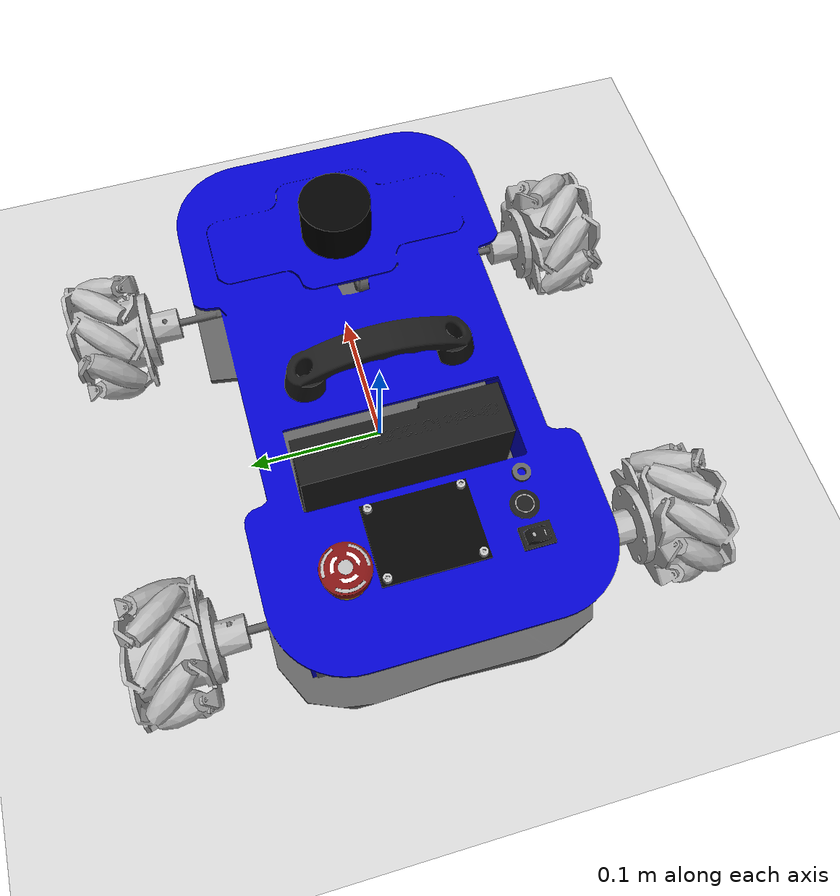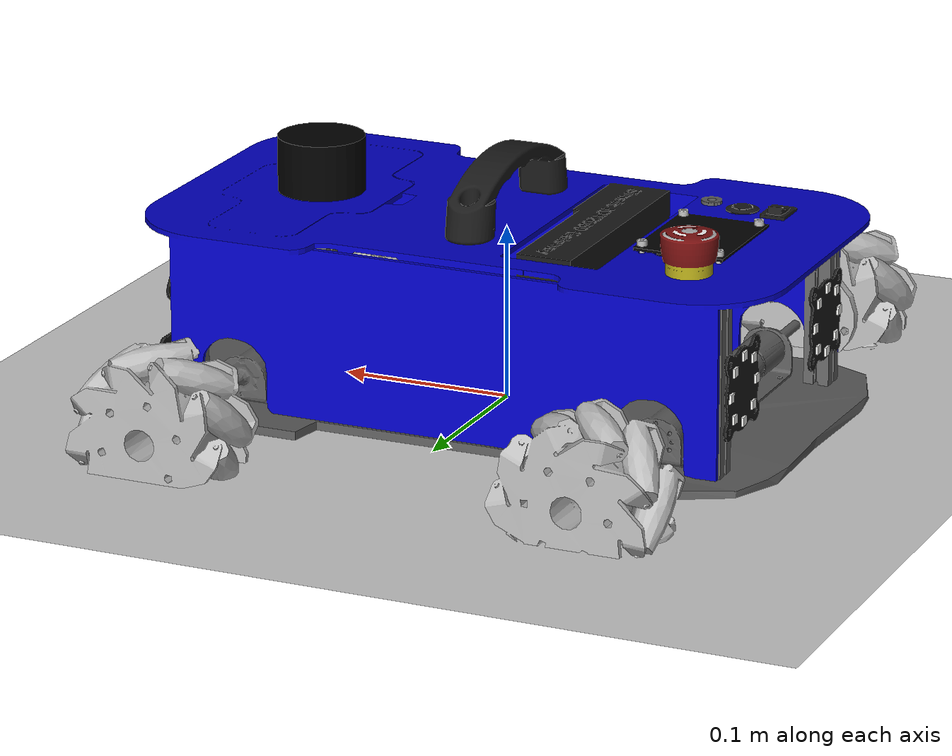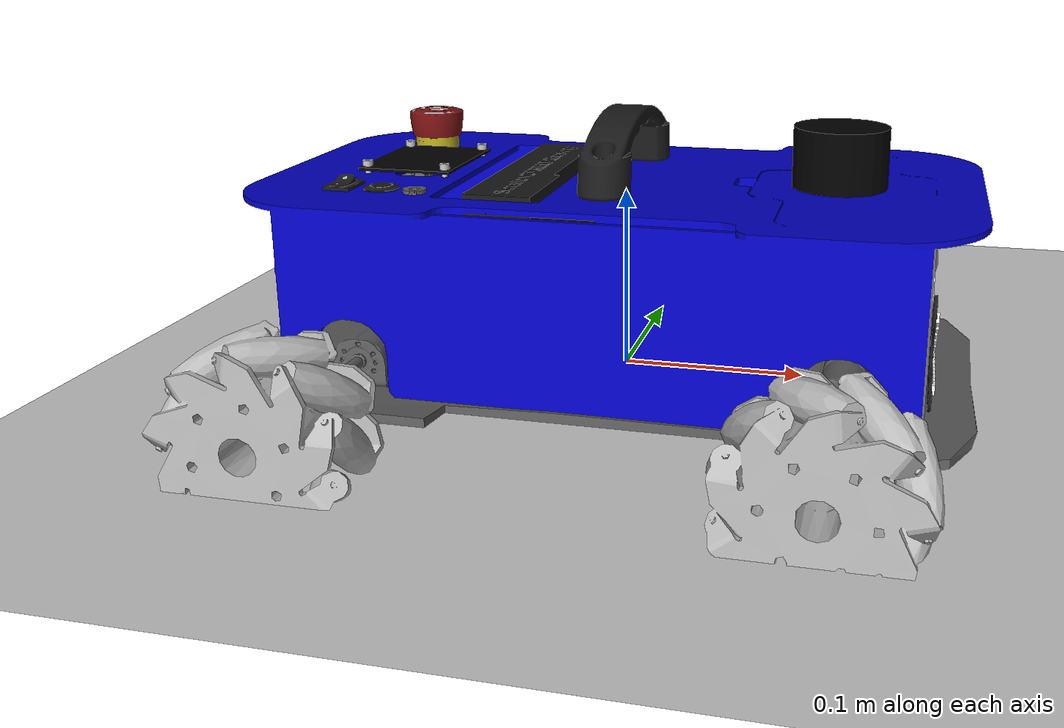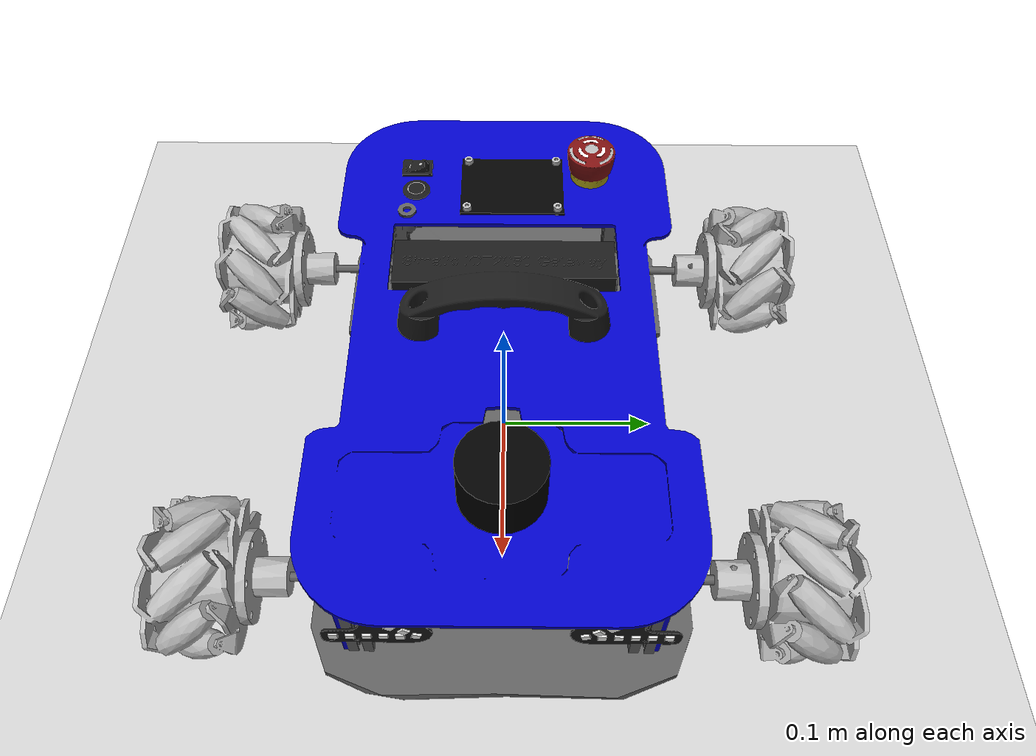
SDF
<sdf version="1.5">
 <world name="eduard_blue_nav2">
  <include><uri>model://sun</uri></include>
  <include><uri>model://ground_plane</uri></include>
  <include><uri>model://eduard_blue_mecanum</uri></include>
 </world>
</sdf>

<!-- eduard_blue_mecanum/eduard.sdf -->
<sdf version='1.5'>
  <model name="eduard-blue-mecanum">
    <static>true</static>
    <pose>0 0 0 0 0 0</pose>
      <!-- chassis -->
      <link name="chassis">
        <pose>0 0 0 0 0 0</pose>
        <inertial>
          <pose>0 0 0 0 0 0</pose>
          <mass>5.0</mass>
          <inertia>
            <ixx>0.00276</ixx>
            <iyy>0.00882</iyy>
            <izz>0.01119</izz>
            <ixy>0</ixy>
            <ixz>0</ixz>
            <iyz>0</iyz>
          </inertia>
        </inertial>
        <visual name="visual">
          <pose>0 0 0 0 0 1.570796327</pose>
          <geometry>
            <mesh>
              <uri>model://eduard_blue_mecanum/mesh/eduard-blue-chassis.dae</uri>
            </mesh>
          </geometry>
        </visual>
        <collision name="collision_bottom">
          <pose>0 0 0.01 0 0 0</pose>
          <geometry>
            <box>
              <size>0.38 0.22 0.02</size>
            </box>
          </geometry>
        </collision>
        <collision name="collision_top">
          <pose>0 0 0.1 0 0 0</pose>
          <geometry>
            <box>
              <size>0.38 0.22 0.02</size>
            </box>
          </geometry>
        </collision>
      </link>

      <!-- wheel rear right -->
      <link name="motor_a">
        <pose>-0.125 -0.18 0.02 -1.570796327 0 0</pose>
        <inertial>
          <pose>0 0 0 0 0 0</pose>
          <mass>0.3</mass>
          <inertia>
            <ixx>3.0e-5</ixx>
            <iyy>3.0e-5</iyy>
            <izz>5.0e-5</izz>
            <ixy>0</ixy>
            <ixz>0</ixz>
            <iyz>0</iyz>
          </inertia>
        </inertial>
        <visual name="visual">
          <geometry>
            <mesh>
              <uri>model://eduard_blue_mecanum/mesh/mecanum-wheel-left-eduard.dae</uri>
            </mesh>
          </geometry>
        </visual>
        <collision name="collision">
          <pose>0 0 0 0 0 0</pose>
          <geometry>
            <cylinder>
              <radius>0.05</radius>
              <length>0.055</length>
            </cylinder>
          </geometry>
          <max_contacts>2</max_contacts>
          <surface>
            <friction>
              <torsional>
                <coefficient>0.9</coefficient>
                <surface_radius>0.01</surface_radius>
                <use_patch_radius>true</use_patch_radius>
                <ode>
                  <slip>0.2</slip>
                </ode>
              </torsional>
            </friction>
            <contact>
              <ode>
                <min_depth>0.005</min_depth>
              </ode>
            </contact>
          </surface>
        </collision>
      </link>

      <!-- wheel front right -->
      <link name="motor_b">
        <pose>0.125 -0.18 0.02 -1.570796327 0 0</pose>
        <inertial>
          <pose>0 0 0 0 0 0</pose>
          <mass>0.3</mass>
          <inertia>
            <ixx>3.0e-5</ixx>
            <iyy>3.0e-5</iyy>
            <izz>5.0e-5</izz>
            <ixy>0</ixy>
            <ixz>0</ixz>
            <iyz>0</iyz>
          </inertia>
        </inertial>
        <visual name="visual">
          <geometry>
            <mesh>
              <uri>model://eduard_blue_mecanum/mesh/mecanum-wheel-right-eduard.dae</uri>
            </mesh>
          </geometry>
        </visual>
        <collision name="collision">
          <pose>0 0 0 0 0 0</pose>
          <geometry>
            <cylinder>
              <radius>0.05</radius>
              <length>0.055</length>
            </cylinder>
          </geometry>
          <max_contacts>2</max_contacts>
          <surface>
            <friction>
              <torsional>
                <coefficient>0.9</coefficient>
                <surface_radius>0.01</surface_radius>
                <use_patch_radius>true</use_patch_radius>
                <ode>
                  <slip>0.2</slip>
                </ode>
              </torsional>
            </friction>
            <contact>
              <ode>
                <min_depth>0.005</min_depth>
              </ode>
            </contact>
          </surface>
        </collision>
      </link>

      <!-- wheel rear left -->
      <link name="motor_c">
        <pose>-0.125 0.18 0.02 1.570796327 0 0</pose>
        <inertial>
          <pose>0 0 0 0 0 0</pose>
          <mass>0.3</mass>
          <inertia>
            <ixx>3.0e-5</ixx>
            <iyy>3.0e-5</iyy>
            <izz>5.0e-5</izz>
            <ixy>0</ixy>
            <ixz>0</ixz>
            <iyz>0</iyz>
          </inertia>
        </inertial>
        <visual name="visual">
          <geometry>
            <mesh>
              <uri>model://eduard_blue_mecanum/mesh/mecanum-wheel-right-eduard.dae</uri>
            </mesh>
          </geometry>
        </visual>
        <collision name="collision">
          <pose>0 0 0 0 0 0</pose>
          <geometry>
            <cylinder>
              <radius>0.05</radius>
              <length>0.055</length>
            </cylinder>
          </geometry>
          <max_contacts>2</max_contacts>
          <surface>
            <friction>
              <torsional>
                <coefficient>0.9</coefficient>
                <surface_radius>0.01</surface_radius>
                <use_patch_radius>true</use_patch_radius>
                <ode>
                  <slip>0.2</slip>
                </ode>
              </torsional>
            </friction>
            <contact>
              <ode>
                <min_depth>0.005</min_depth>
              </ode>
            </contact>
          </surface>
        </collision>
      </link>

      <!-- wheel front left -->
      <link name="motor_d">
        <pose>0.125 0.18 0.02 1.570796327 0 0</pose>
        <inertial>
          <pose>0 0 0 0 0 0</pose>
          <mass>0.3</mass>
          <inertia>
            <ixx>3.0e-5</ixx>
            <iyy>3.0e-5</iyy>
            <izz>5.0e-5</izz>
            <ixy>0</ixy>
            <ixz>0</ixz>
            <iyz>0</iyz>
          </inertia>
        </inertial>
        <visual name="visual">
          <geometry>
            <mesh>
              <uri>model://eduard_blue_mecanum/mesh/mecanum-wheel-left-eduard.dae</uri>
            </mesh>
          </geometry>
        </visual>
        <collision name="collision">
          <pose>0 0 0 0 0 0</pose>
          <geometry>
            <cylinder>
              <radius>0.05</radius>
              <length>0.055</length>
            </cylinder>
          </geometry>
          <max_contacts>2</max_contacts>
          <surface>
            <friction>
              <torsional>
                <coefficient>0.9</coefficient>
                <surface_radius>0.01</surface_radius>
                <use_patch_radius>true</use_patch_radius>
                <ode>
                  <slip>0.2</slip>
                </ode>
              </torsional>
            </friction>
            <contact>
              <ode>
                <min_depth>0.005</min_depth>
              </ode>
            </contact>
          </surface>
        </collision>
      </link>

      <!-- Range Sensors -->
      <!-- Front Left-->
      <link name="range_front_left">
        <pose>0.17 0.063 0.045 0 0 0</pose>
        <inertial>
          <pose>0 0 0 0 0 0</pose>
          <mass>0.1</mass>
          <inertia>
            <ixx>3.0e-6</ixx>
            <iyy>3.0e-6</iyy>
            <izz>5.0e-6</izz>
            <ixy>0</ixy>
            <ixz>0</ixz>
            <iyz>0</iyz>
          </inertia>
        </inertial>
        <sensor name="range/front/left" type="ray">
          <visualize>false</visualize>
          <ray>
            <scan>
              <horizontal>
                <min_angle>-0.08726646</min_angle>
                <max_angle> 0.08726646</max_angle>
                <samples>4</samples>
              </horizontal>
              <vertical>
                <min_angle>-0.04363323</min_angle>
                <max_angle> 0.04363323</max_angle>
                <samples>2</samples>
              </vertical>
            </scan>
            <range>
              <min>0.01</min>
              <max>2.0</max>
            </range>
            <noise>
              <type>gaussian</type>
              <stddev>0.0025</stddev>
            </noise>
          </ray>
        </sensor>
      </link>
      <!-- Front Right-->
      <link name="range_front_right">
        <pose>0.17 -0.063 0.045 0 0 0</pose>
        <inertial>
          <pose>0 0 0 0 0 0</pose>
          <mass>0.1</mass>
          <inertia>
            <ixx>3.0e-6</ixx>
            <iyy>3.0e-6</iyy>
            <izz>5.0e-6</izz>
            <ixy>0</ixy>
            <ixz>0</ixz>
            <iyz>0</iyz>
          </inertia>
        </inertial>
        <sensor name="range/front/right" type="ray">
          <visualize>false</visualize>
          <ray>
            <scan>
              <horizontal>
                <min_angle>-0.08726646</min_angle>
                <max_angle> 0.08726646</max_angle>
                <samples>4</samples>
              </horizontal>
              <vertical>
                <min_angle>-0.04363323</min_angle>
                <max_angle> 0.04363323</max_angle>
                <samples>2</samples>
              </vertical>
            </scan>
            <range>
              <min>0.01</min>
              <max>2.0</max>
            </range>
            <noise>
              <type>gaussian</type>
              <stddev>0.0025</stddev>
            </noise>
          </ray>
        </sensor>
      </link>
      <!-- Rear Left -->
      <link name="range_rear_left">
        <pose>-0.17 0.063 0.05 0 0 3.141592654</pose>
        <inertial>
          <pose>0 0 0 0 0 0</pose>
          <mass>0.1</mass>
          <inertia>
            <ixx>3.0e-6</ixx>
            <iyy>3.0e-6</iyy>
            <izz>5.0e-6</izz>
            <ixy>0</ixy>
            <ixz>0</ixz>
            <iyz>0</iyz>
          </inertia>
        </inertial>
        <sensor name="range/rear/left" type="ray">
          <visualize>false</visualize>
          <ray>
            <scan>
              <horizontal>
                <min_angle>-0.08726646</min_angle>
                <max_angle> 0.08726646</max_angle>
                <samples>4</samples>
              </horizontal>
              <vertical>
                <min_angle>-0.04363323</min_angle>
                <max_angle> 0.04363323</max_angle>
                <samples>2</samples>
              </vertical>
            </scan>
            <range>
              <min>0.01</min>
              <max>2.0</max>
            </range>
            <noise>
              <type>gaussian</type>
              <stddev>0.0025</stddev>
            </noise>
          </ray>
        </sensor>
      </link>
      <!-- Rear Right-->
      <link name="range_rear_right">
        <pose>-0.17 -0.063 0.05 0 0 3.141592654</pose>
        <inertial>
          <pose>0 0 0 0 0 0</pose>
          <mass>0.1</mass>
          <inertia>
            <ixx>3.0e-6</ixx>
            <iyy>3.0e-6</iyy>
            <izz>5.0e-6</izz>
            <ixy>0</ixy>
            <ixz>0</ixz>
            <iyz>0</iyz>
          </inertia>
        </inertial>
        <sensor name="range/rear/right" type="ray">
          <visualize>false</visualize>
          <ray>
            <scan>
              <horizontal>
                <min_angle>-0.08726646</min_angle>
                <max_angle> 0.08726646</max_angle>
                <samples>4</samples>
              </horizontal>
              <vertical>
                <min_angle>-0.04363323</min_angle>
                <max_angle> 0.04363323</max_angle>
                <samples>2</samples>
              </vertical>
            </scan>
            <range>
              <min>0.01</min>
              <max>2.0</max>
            </range>
            <noise>
              <type>gaussian</type>
              <stddev>0.0025</stddev>
            </noise>
          </ray>
        </sensor>
      </link>

      <!-- IMU Sensor -->
      <link name="imu">
        <pose>0 0 0 0 0 0</pose>
        <inertial>
          <pose>0 0 0 0 0 0</pose>
          <mass>0.1</mass>
          <inertia>
            <ixx>3.0e-6</ixx>
            <iyy>3.0e-6</iyy>
            <izz>5.0e-6</izz>
            <ixy>0</ixy>
            <ixz>0</ixz>
            <iyz>0</iyz>
          </inertia>
        </inertial>
        <sensor name="imu" type="imu">
          <update_rate>10</update_rate>
          <visualize>false</visualize>
        </sensor>
      </link>

      <!-- LIDAR Sensor -->
      <link name="lidar">
        <pose>0.115 0 0.12 0 0 0</pose>
        <inertial>
          <inertia>
            <ixx>3.0e-6</ixx>
            <iyy>3.0e-6</iyy>
            <izz>5.0e-6</izz>
            <ixy>0</ixy>
            <ixz>0</ixz>
            <iyz>0</iyz>
          </inertia>
          <mass>0.3</mass>
        </inertial>

        <collision name="collision">
          <geometry>
            <cylinder>
              <radius>0.025</radius>
              <length>0.04</length>
            </cylinder>
          </geometry>
        </collision>

        <visual name="visual">
          <geometry>
            <cylinder>
              <radius>0.025</radius>
              <length>0.04</length>
            </cylinder>
          </geometry>
          <material>
            <ambient>0.0 0.0 0.0 1.0</ambient>
            <diffuse>0.0 0.0 0.0 1.0</diffuse>
            <specular>0.0 0.0 0.0 1.0</specular>
            <emissive>0.0 0.0 0.0 1.0</emissive>
          </material>
        </visual>

        <sensor name="lidar" type="ray">
          <pose>0 0 0.01 0 0 0</pose>
          <always_on>true</always_on>
          <visualize>false</visualize>
          <update_rate>10</update_rate>
          <ray>
            <scan>
              <horizontal>
                <samples>360</samples>
                <resolution>1.00000</resolution>
                <min_angle>0.000000</min_angle>
                <max_angle>6.280000</max_angle>
              </horizontal>
            </scan>
            <range>
              <min>0.15</min>
              <max>12.0</max>
              <resolution>0.015000</resolution>
            </range>
            <noise>
              <type>gaussian</type>
              <mean>0.0</mean>
              <stddev>0.01</stddev>
            </noise>
          </ray>
          <plugin name="eduard_blue_scan" filename="libgazebo_ros_ray_sensor.so">
            <ros>
              <remapping>~/out:=/eduard/blue/scan</remapping>
            </ros>
            <output_type>sensor_msgs/LaserScan</output_type>
            <frame_name>eduard/blue/laser</frame_name>
          </plugin>
        </sensor>
      </link>

      <!-- Joints. -->
      <joint type="revolute" name="axis_front_left">
        <pose>0 0 0 0 0 0</pose>
        <child>motor_d</child>
        <parent>chassis</parent>
        <axis>
          <xyz>0 0 1</xyz>
        </axis>
      </joint>
      <joint type="revolute" name="axis_front_right">
        <pose>0 0 0 0 0 0</pose>
        <child>motor_b</child>
        <parent>chassis</parent>
        <axis>
          <xyz>0 0 1</xyz>
        </axis>
      </joint>
      <joint type="revolute" name="axis_rear_left">
        <pose>0 0 0 0 0 0</pose>
        <child>motor_c</child>
        <parent>chassis</parent>
        <axis>
          <xyz>0 0 1</xyz>
        </axis>
      </joint>
      <joint type="revolute" name="axis_rear_right">
        <pose>0 0 0 0 0 0</pose>
        <child>motor_a</child>
        <parent>chassis</parent>
        <axis>
          <xyz>0 0 1</xyz>
        </axis>
      </joint>
      <joint type="revolute" name="mount_range_front_left">
        <child>range_front_left</child>
        <parent>chassis</parent>
        <axis>
          <xyz>0 0 1</xyz>
          <limit>
            <upper>0</upper>
            <lower>0</lower>
          </limit>
        </axis>
      </joint>
      <joint type="revolute" name="mount_range_front_right">
        <child>range_front_right</child>
        <parent>chassis</parent>
        <axis>
          <xyz>0 0 1</xyz>
          <limit>
            <upper>0</upper>
            <lower>0</lower>
          </limit>
        </axis>
      </joint>
      <joint type="revolute" name="mount_range_rear_left">
        <child>range_rear_left</child>
        <parent>chassis</parent>
        <axis>
          <xyz>0 0 1</xyz>
          <limit>
            <upper>0</upper>
            <lower>0</lower>
          </limit>
        </axis>
      </joint>
      <joint type="revolute" name="mount_range_rear_right">
        <child>range_rear_right</child>
        <parent>chassis</parent>
        <axis>
          <xyz>0 0 1</xyz>
          <limit>
            <upper>0</upper>
            <lower>0</lower>
          </limit>
        </axis>
      </joint>
      <joint type="revolute" name="mount_imu">
        <child>imu</child>
        <parent>chassis</parent>
        <axis>
          <xyz>0 0 1</xyz>
          <limit>
            <upper>0</upper>
            <lower>0</lower>
          </limit>
        </axis>
      </joint>
      <joint type="revolute" name="mount_lidar">
        <child>lidar</child>
        <parent>chassis</parent>
        <axis>
          <xyz>0 0 1</xyz>
          <limit>
            <upper>0</upper>
            <lower>0</lower>
          </limit>
        </axis>
      </joint>

      <!-- plugins to control robot behavior -->
     <plugin name="eduard_robot" filename="libeduard-model-plugin.so">
       <robot_namespace>/eduard/blue</robot_namespace>
     </plugin>
    </model>
</sdf>
